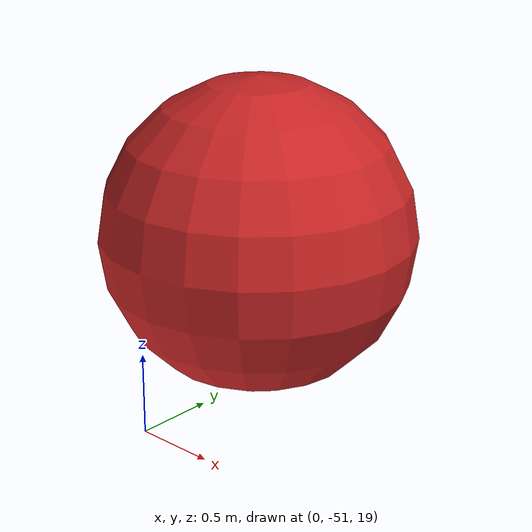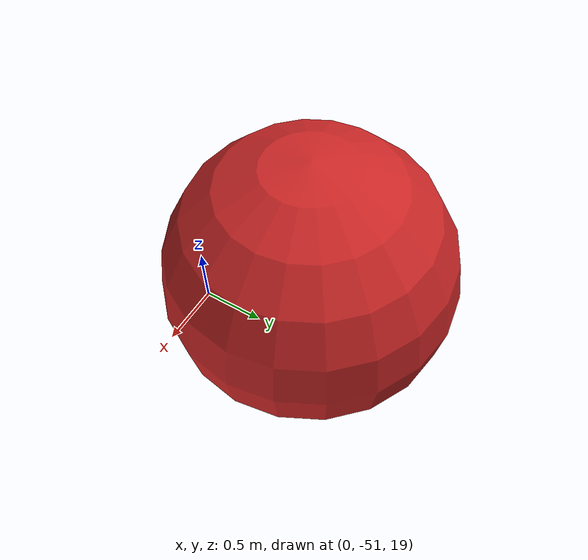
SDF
<?xml version="1.0" ?>
<sdf version="1.5">
  <world name="default">
    <include>
      <uri>model://sun</uri>
    </include>
    <include>
      <uri>model://ground_plane</uri>
    </include>
<model name="big_sphere_target">
      <pose>0 -50 20 0 0 0</pose>

      <static>true</static>

      <link name="link">
        <collision name="collision">
          <geometry>
            <sphere>
              <radius>1.0</radius> </sphere>
          </geometry>
        </collision>

        <visual name="visual">
          <geometry>
            <sphere>
              <radius>1.0</radius> </sphere>
          </geometry>
          <material>
            <script>
              <uri>file://media/materials/scripts/gazebo.material</uri>
              <name>Gazebo/Red</name> </script>
          </material>
        </visual>
      </link>
    </model>
    <scene>
      <shadows>false</shadows> <ambient>1.0 1.0 1.0 1.0</ambient>
      <background>1.0 1.0 1.0 1.0</background>
    </scene>

    <physics name='default_physics' default='0' type='ode'>
      <gravity>0 0 -9.8066</gravity>
      <ode>
        <solver>
          <type>quick</type>
          <iters>10</iters>
          <sor>1.3</sor>
          <use_dynamic_moi_rescaling>0</use_dynamic_moi_rescaling>
        </solver>
        <constraints>
          <cfm>0</cfm>
          <erp>0.2</erp>
          <contact_max_correcting_vel>100</contact_max_correcting_vel>
          <contact_surface_layer>0.001</contact_surface_layer>
        </constraints>
      </ode>
      <max_step_size>0.004</max_step_size>
      <real_time_factor>1</real_time_factor>
      <real_time_update_rate>250</real_time_update_rate>
    </physics>
    <gui fullscreen='0'>
      <camera name='user_camera'>
        <pose>-5 -5 5 0 0.5 0.78</pose>
        <view_controller>orbit</view_controller>
        <projection_type>perspective</projection_type>
      </camera>
    </gui>
  </world>
</sdf>
